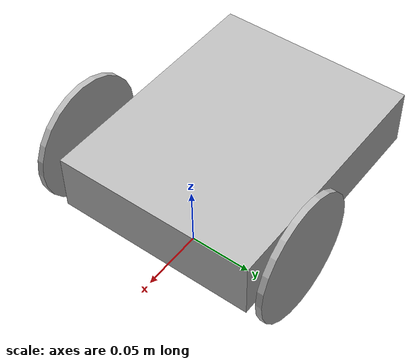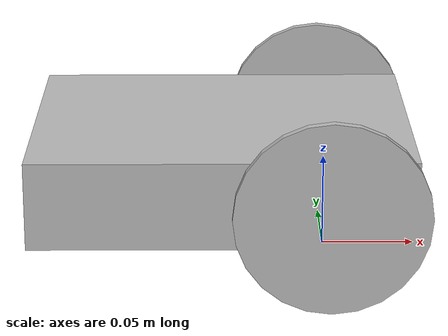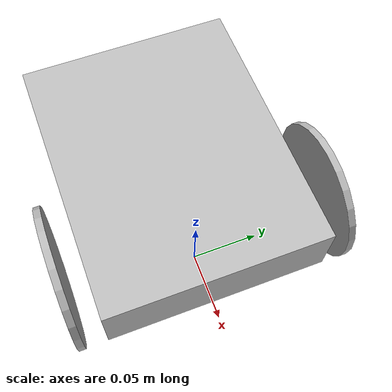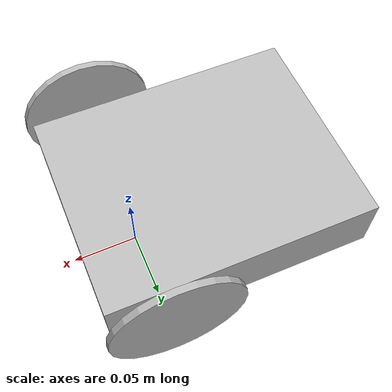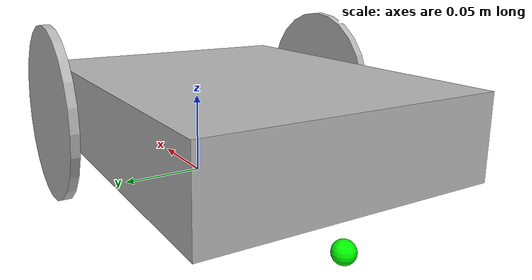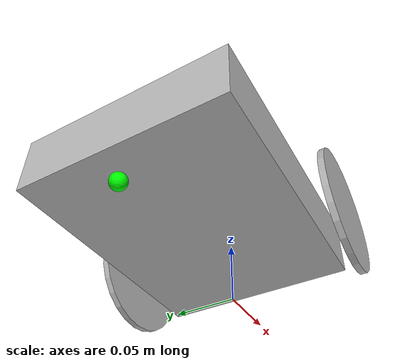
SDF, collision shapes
<?xml version='1.0'?>
<sdf version='1.6'>
  <model name='puzzlebot1'>

    <!-- ── Chassis ─────────────────────────────────────────────────────── -->
    <link name='chassis'>
      <pose>0 0 0.05 0 0 0</pose>

      <inertial>
        <mass>0.8</mass>
        <pose>-0.05 0 0 0 0 0</pose>
        <inertia>
          <ixx>0.004</ixx><iyy>0.004</iyy><izz>0.004</izz>
          <ixy>0</ixy><ixz>0</ixz><iyz>0</iyz>
        </inertia>
      </inertial>

      <visual name='visual'>
        <geometry><mesh><uri>model://puzzlebot/meshes/chassis1.dae</uri></mesh></geometry>
      </visual>

      <collision name='collision'>
        <pose>-0.055 0 0 0 0 0</pose>
        <geometry><box><size>0.2 0.16 0.046</size></box></geometry>
      </collision>

      <!-- Camera sensor (classic Gazebo) -->
      <sensor type='camera' name='camera_sensor'>
        <pose>0.05 0 0.11 0 0 0</pose>
        <camera>
          <horizontal_fov>1.047</horizontal_fov>
          <image><width>1280</width><height>720</height><format>R8G8B8</format></image>
          <clip><near>0.1</near><far>100</far></clip>
        </camera>
        <always_on>1</always_on>
        <update_rate>10</update_rate>
        <visualize>false</visualize>
        <plugin name='camera_controller' filename='libgazebo_ros_camera.so'>
          <alwaysOn>true</alwaysOn>
          <updateRate>10</updateRate>
          <cameraName>camera</cameraName>
          <imageTopicName>/camera</imageTopicName>
          <cameraInfoTopicName>/camera_info</cameraInfoTopicName>
          <frameName>camera_link</frameName>
        </plugin>
      </sensor>

      <!-- LiDAR sensor (classic Gazebo — gpu_ray falls back to ray) -->
      <sensor name='gpu_lidar' type='ray'>
        <pose>0 0 0.14 0 0 0</pose>
        <ray>
          <scan>
            <horizontal>
              <samples>90</samples>
              <resolution>1</resolution>
              <min_angle>-3.14159265</min_angle>
              <max_angle>3.14159265</max_angle>
            </horizontal>
          </scan>
          <range>
            <min>0.08</min>
            <max>10.0</max>
            <resolution>0.01</resolution>
          </range>
          <noise><type>gaussian</type><mean>0</mean><stddev>0.01</stddev></noise>
        </ray>
        <always_on>1</always_on>
        <update_rate>5</update_rate>
        <visualize>true</visualize>
        <plugin name='lidar_plugin' filename='libgazebo_ros_ray_sensor.so'>
          <ros>
            <remapping>~/out:=/lidar</remapping>
          </ros>
          <output_type>sensor_msgs/LaserScan</output_type>
          <frame_name>lidar_link</frame_name>
        </plugin>
      </sensor>

    </link>

    <!-- ── Right wheel ──────────────────────────────────────────────────── -->
    <link name='right_wheel'>
      <pose>0.0 -0.095 0.05 0 0 0</pose>
      <inertial>
        <mass>0.05</mass>
        <inertia>
          <ixx>0.002</ixx><iyy>0.002</iyy><izz>0.002</izz>
          <ixy>0</ixy><ixz>0</ixz><iyz>0</iyz>
        </inertia>
      </inertial>
      <visual name='visual'>
        <geometry><mesh><uri>model://puzzlebot/meshes/wheel.dae</uri></mesh></geometry>
      </visual>
      <collision name='collision'>
        <pose>0 -0.0025 0 1.5707 0 0</pose>
        <geometry><cylinder><radius>0.05</radius><length>0.005</length></cylinder></geometry>
        <surface><friction><ode><mu>1.0</mu><mu2>1.0</mu2></ode></friction></surface>
      </collision>
    </link>

    <!-- ── Left wheel ───────────────────────────────────────────────────── -->
    <link name='left_wheel'>
      <pose>0.0 0.095 0.05 0 0 0</pose>
      <inertial>
        <mass>0.05</mass>
        <inertia>
          <ixx>0.002</ixx><iyy>0.002</iyy><izz>0.002</izz>
          <ixy>0</ixy><ixz>0</ixz><iyz>0</iyz>
        </inertia>
      </inertial>
      <visual name='visual'>
        <geometry><mesh><uri>model://puzzlebot/meshes/wheel.dae</uri></mesh></geometry>
      </visual>
      <collision name='collision'>
        <pose>0 -0.0025 0 1.5707 0 0</pose>
        <geometry><cylinder><radius>0.05</radius><length>0.005</length></cylinder></geometry>
        <surface><friction><ode><mu>1.0</mu><mu2>1.0</mu2></ode></friction></surface>
      </collision>
    </link>

    <!-- ── Caster ───────────────────────────────────────────────────────── -->
    <link name='caster'>
      <pose>-0.145 0 0.006 0 0 0</pose>
      <inertial>
        <mass>0.01</mass>
        <inertia>
          <ixx>0.0000025</ixx><iyy>0.0000025</iyy><izz>0.0000025</izz>
          <ixy>0</ixy><ixz>0</ixz><iyz>0</iyz>
        </inertia>
      </inertial>
      <visual name='visual'>
        <geometry><sphere><radius>0.006</radius></sphere></geometry>
        <material><ambient>0 1 0 1</ambient><diffuse>0 1 0 1</diffuse></material>
      </visual>
      <collision name='collision'>
        <geometry><sphere><radius>0.006</radius></sphere></geometry>
      </collision>
    </link>

    <!-- ── Joints ───────────────────────────────────────────────────────── -->
    <joint name='left_wheel_joint' type='revolute'>
      <parent>chassis</parent><child>left_wheel</child>
      <axis>
        <xyz>0 1 0</xyz>
        <limit><lower>-1e16</lower><upper>1e16</upper><effort>1</effort></limit>
        <dynamics><friction>0.1</friction></dynamics>
      </axis>
    </joint>

    <joint name='right_wheel_joint' type='revolute'>
      <parent>chassis</parent><child>right_wheel</child>
      <axis>
        <xyz>0 1 0</xyz>
        <limit><lower>-1e16</lower><upper>1e16</upper><effort>1</effort></limit>
        <dynamics><friction>0.1</friction></dynamics>
      </axis>
    </joint>

    <joint name='caster_wheel' type='ball'>
      <parent>chassis</parent><child>caster</child>
    </joint>

    <!-- ── ROS2-native differential drive plugin ──────────────────────── -->
    <!-- libgazebo_ros_diff_drive is built into gazebo_ros and uses ROS2    -->
    <!-- transport natively — no bridge needed. It reads /cmd_vel (Twist)   -->
    <!-- and publishes /odom + odom→base_link TF directly.                  -->
    <plugin name='diff_drive' filename='libgazebo_ros_diff_drive.so'>
      <ros>
        <namespace>/</namespace>
      </ros>

      <!-- Joints -->
      <left_joint>left_wheel_joint</left_joint>
      <right_joint>right_wheel_joint</right_joint>

      <!-- Kinematics — must match physical model -->
      <wheel_separation>0.19</wheel_separation>
      <wheel_diameter>0.10</wheel_diameter>

      <!-- Limits -->
      <max_wheel_torque>1.0</max_wheel_torque>
      <max_wheel_acceleration>2.0</max_wheel_acceleration>

      <!-- Topics -->
      <command_topic>cmd_vel</command_topic>
      <odometry_topic>odom</odometry_topic>
      <odometry_frame>odom</odometry_frame>
      <robot_base_frame>base_link</robot_base_frame>

      <!-- Publish odom→base_link TF from the plugin directly -->
      <publish_odom>true</publish_odom>
      <publish_odom_tf>true</publish_odom_tf>
      <publish_wheel_tf>false</publish_wheel_tf>

      <update_rate>100</update_rate>
    </plugin>

  </model>
</sdf>
